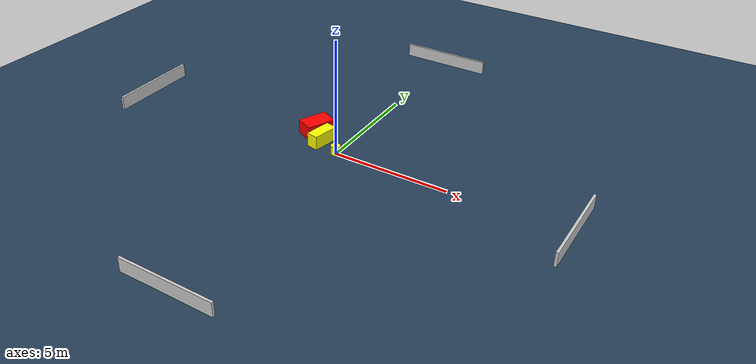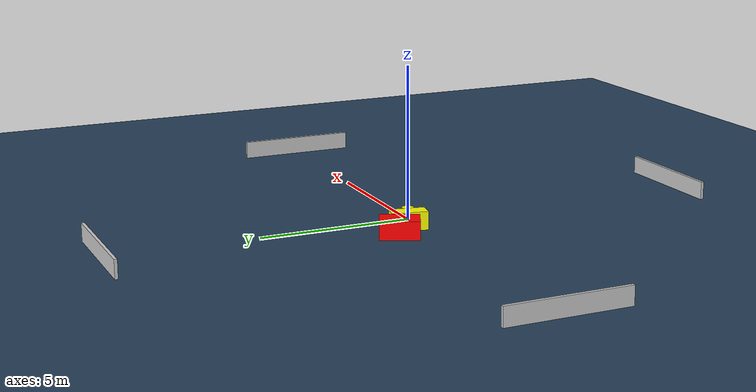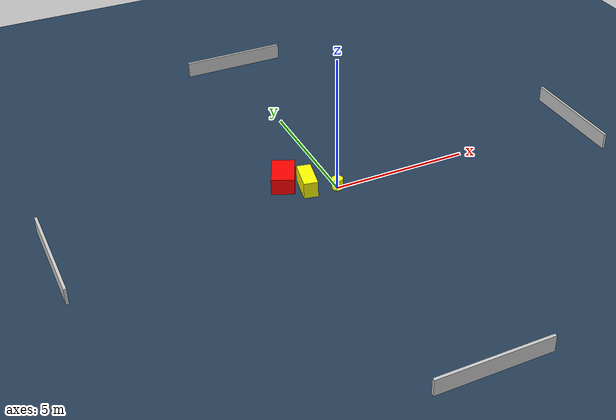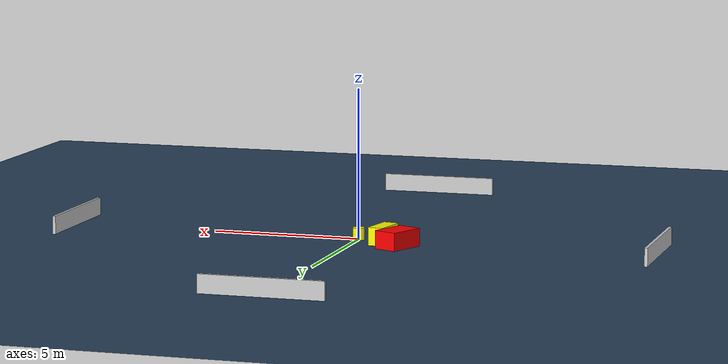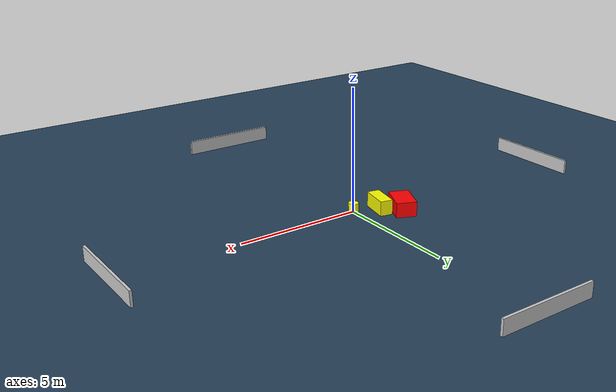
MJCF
<?xml version="1.0" ?>
<mujoco model="generated_environment">
  <option timestep="0.01" integrator="RK4" cone="elliptic"/>
  <default>
    <geom density="1"/>
  </default>
  <asset>
    <texture builtin="gradient" height="3072" name="skybox" rgb1="0.3 0.5 0.7" rgb2="0 0 0" type="skybox" width="512"/>
    <texture builtin="checker" height="300" name="groundplane" rgb1="0.2 0.3 0.4" rgb2="0.1 0.2 0.3" type="2d" width="300"/>
    <material name="groundplane" reflectance="0.2" texrepeat="5 5" texture="groundplane"/>
  </asset>
  <worldbody>
    <light dir="0 0 -1" directional="true" pos="0 0 1.5"/>
    <geom condim="3" friction="0.5 0.005 0.001" material="groundplane" name="floor" pos="0 0 0" size="0 0 0.05" type="plane"/>
    <body name="walls">
      <geom name="wall_1" condim="4" pos="-10.0 0.0 0.3" rgba="0.800000011920929 0.800000011920929 0.800000011920929 1.0" size="0.05 2.0 0.3" type="box"/>
      <geom name="wall_2" condim="4" pos="10.0 0.0 0.3" rgba="0.800000011920929 0.800000011920929 0.800000011920929 1.0" size="0.05 2.0 0.3" type="box"/>
      <geom name="wall_3" condim="4" pos="0.0 -10.0 0.3" rgba="0.800000011920929 0.800000011920929 0.800000011920929 1.0" size="2.0 0.05 0.3" type="box"/>
      <geom name="wall_4" condim="4" pos="0.0 10.0 0.3" rgba="0.800000011920929 0.800000011920929 0.800000011920929 1.0" size="2.0 0.05 0.3" type="box"/>
    </body>
    <body name="robot">
      <joint name="joint_x" type="slide" pos="0 0 0" axis="1 0 0"/>
      <joint name="joint_y" type="slide" pos="0 0 0" axis="0 1 0"/>
      <geom name="robot" type="cylinder" pos="0.0 0.0 0.2" size="0.2 0.2 0.0" mass="5.0" friction="1.0 0.005 0.0001" condim="4" rgba="1.0 1.0 0.0 1.0"/>
    </body>
    <body name="obstacle_1_movable">
      <geom name="obstacle_1_movable" condim="4" pos="-0.9655411438596858 0.43178520603040416 0.3" euler="0 0 348.83590953707045" friction="0.0 0.005 0.001" rgba="1.0 1.0 0.0 1.0" size="0.2565749464630741 0.5834206013683017 0.3" type="box" mass="0.1"/>
      <joint type="free"/>
    </body>
    <body name="obstacle_2_static">
      <geom name="obstacle_2_static" condim="4" pos="-1.6192423772335982 1.0324772102874114 0.3" euler="0 0 335.7468529587697" friction="0.0 0.005 0.001" rgba="1.0 0.0 0.0 1.0" size="0.40825121988626395 0.6340991685887767 0.3" type="box"/>
    </body>
  </worldbody>
  <actuator>
    <motor name="actuator_x" joint="joint_x" gear="1" ctrlrange="-1 1"/>
    <motor name="actuator_y" joint="joint_y" gear="1" ctrlrange="-1 1"/>
  </actuator>
</mujoco>
